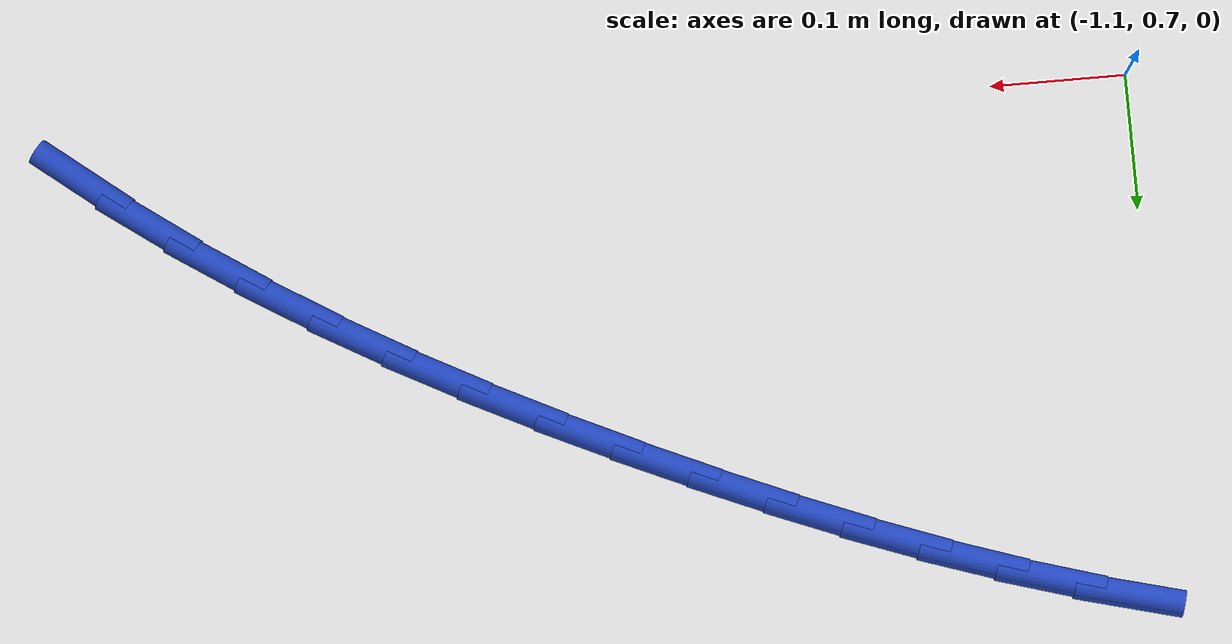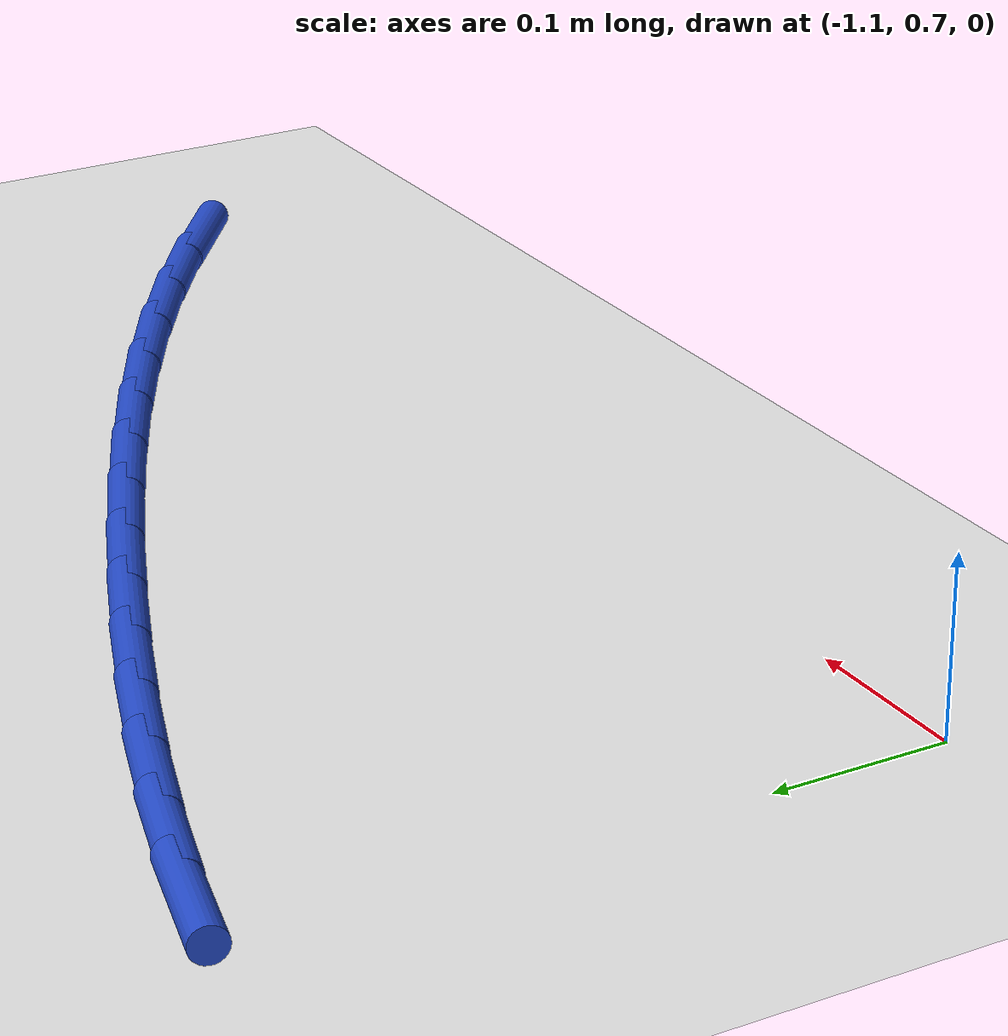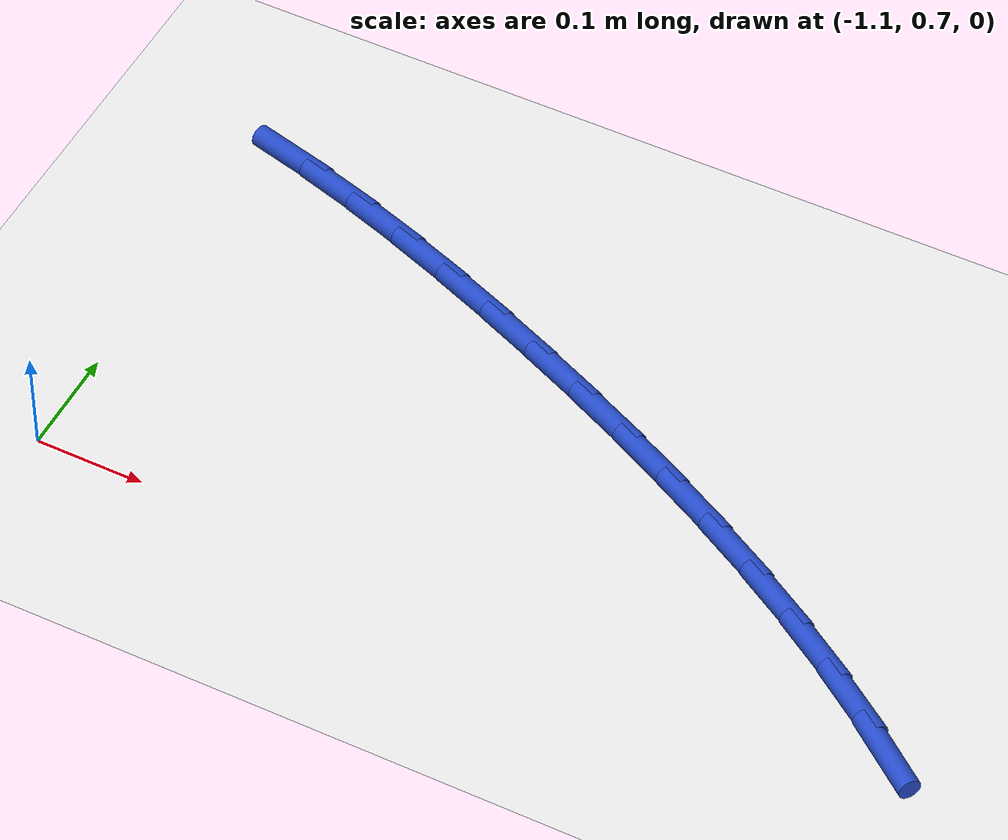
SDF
<sdf version="1.6">
 <world name="default">
  <model name="ground_plane">
   <static>1</static>
   <link name="link">
    <collision name="collision">
     <geometry><plane><normal>0 0 1</normal><size>100 100</size></plane></geometry>
     <surface><friction><ode><mu>100</mu><mu2>50</mu2></ode></friction></surface>
    </collision>
    <visual name="visual">
     <cast_shadows>0</cast_shadows>
     <geometry><plane><normal>0 0 1</normal><size>100 100</size></plane></geometry>
     <material>
      <script><uri>file://media/materials/scripts/gazebo.material</uri><name>Gazebo/WhiteGlow</name></script>
     </material>
    </visual>
   </link>
  </model>
  <model name="line">
   <link name="link_14">
    <pose>-0.33013463952812644 0.7179930879435058 0.01 0 1.57 -0.6647547422468226</pose>
    <collision name="collision">
     <geometry><cylinder><radius>0.01</radius><length>0.08</length></cylinder></geometry>
    </collision>
    <visual name="visual">
     <material>
      <script><name>Gazebo/Blue</name><uri>file://media/materials/scripts/gazebo.material</uri></script>
     </material>
     <geometry><cylinder><radius>0.01</radius><length>0.08</length></cylinder></geometry>
    </visual>
   </link>
   <link name="link_15">
    <pose>-0.37649296534609056 0.7543265137620769 0.01 0 1.57 -0.6194197803285053</pose>
    <collision name="collision">
     <geometry><cylinder><radius>0.01</radius><length>0.08</length></cylinder></geometry>
    </collision>
    <visual name="visual">
     <material>
      <script><name>Gazebo/Blue</name><uri>file://media/materials/scripts/gazebo.material</uri></script>
     </material>
     <geometry><cylinder><radius>0.01</radius><length>0.08</length></cylinder></geometry>
    </visual>
   </link>
   <link name="link_16">
    <pose>-0.4247684291479025 0.7887485333640056 0.01 0 1.57 -0.5786192318658455</pose>
    <collision name="collision">
     <geometry><cylinder><radius>0.01</radius><length>0.08</length></cylinder></geometry>
    </collision>
    <visual name="visual">
     <material>
      <script><name>Gazebo/Blue</name><uri>file://media/materials/scripts/gazebo.material</uri></script>
     </material>
     <geometry><cylinder><radius>0.01</radius><length>0.08</length></cylinder></geometry>
    </visual>
   </link>
   <link name="link_17">
    <pose>-0.47468709384277386 0.8213552441171847 0.01 0 1.57 -0.542062888515661</pose>
    <collision name="collision">
     <geometry><cylinder><radius>0.01</radius><length>0.08</length></cylinder></geometry>
    </collision>
    <visual name="visual">
     <material>
      <script><name>Gazebo/Blue</name><uri>file://media/materials/scripts/gazebo.material</uri></script>
     </material>
     <geometry><cylinder><radius>0.01</radius><length>0.08</length></cylinder></geometry>
    </visual>
   </link>
   <link name="link_18">
    <pose>-0.5259750223399162 0.8522427433895068 0.01 0 1.57 -0.5094669987496914</pose>
    <collision name="collision">
     <geometry><cylinder><radius>0.01</radius><length>0.08</length></cylinder></geometry>
    </collision>
    <visual name="visual">
     <material>
      <script><name>Gazebo/Blue</name><uri>file://media/materials/scripts/gazebo.material</uri></script>
     </material>
     <geometry><cylinder><radius>0.01</radius><length>0.08</length></cylinder></geometry>
    </visual>
   </link>
   <link name="link_19">
    <pose>-0.5783582775485411 0.8815071285488643 0.01 0 1.57 -0.4805684579718444</pose>
    <collision name="collision">
     <geometry><cylinder><radius>0.01</radius><length>0.08</length></cylinder></geometry>
    </collision>
    <visual name="visual">
     <material>
      <script><name>Gazebo/Blue</name><uri>file://media/materials/scripts/gazebo.material</uri></script>
     </material>
     <geometry><cylinder><radius>0.01</radius><length>0.08</length></cylinder></geometry>
    </visual>
   </link>
   <link name="link_20">
    <pose>-0.6315629223778602 0.9092444969631499 0.01 0 1.57 -0.4551342969713</pose>
    <collision name="collision">
     <geometry><cylinder><radius>0.01</radius><length>0.08</length></cylinder></geometry>
    </collision>
    <visual name="visual">
     <material>
      <script><name>Gazebo/Blue</name><uri>file://media/materials/scripts/gazebo.material</uri></script>
     </material>
     <geometry><cylinder><radius>0.01</radius><length>0.08</length></cylinder></geometry>
    </visual>
   </link>
   <link name="link_21">
    <pose>-0.6853150197370849 0.9355509460002563 0.01 0 1.57 -0.4329680846589801</pose>
    <collision name="collision">
     <geometry><cylinder><radius>0.01</radius><length>0.08</length></cylinder></geometry>
    </collision>
    <visual name="visual">
     <material>
      <script><name>Gazebo/Blue</name><uri>file://media/materials/scripts/gazebo.material</uri></script>
     </material>
     <geometry><cylinder><radius>0.01</radius><length>0.08</length></cylinder></geometry>
    </visual>
   </link>
   <link name="link_22">
    <pose>-0.7393406325354269 0.960522573028076 0.01 0 1.57 -0.41389965084271174</pose>
    <collision name="collision">
     <geometry><cylinder><radius>0.01</radius><length>0.08</length></cylinder></geometry>
    </collision>
    <visual name="visual">
     <material>
      <script><name>Gazebo/Blue</name><uri>file://media/materials/scripts/gazebo.material</uri></script>
     </material>
     <geometry><cylinder><radius>0.01</radius><length>0.08</length></cylinder></geometry>
    </visual>
   </link>
   <link name="link_23">
    <pose>-0.7933668993948282 0.9842549836208743 0.01 0 1.57 -0.39569955357456016</pose>
    <collision name="collision">
     <geometry><cylinder><radius>0.01</radius><length>0.08</length></cylinder></geometry>
    </collision>
    <visual name="visual">
     <material>
      <script><name>Gazebo/Blue</name><uri>file://media/materials/scripts/gazebo.material</uri></script>
     </material>
     <geometry><cylinder><radius>0.01</radius><length>0.08</length></cylinder></geometry>
    </visual>
   </link>
   <link name="link_24">
    <pose>-0.8472740524300535 1.006773792172157 0.01 0 1.57 -0.3740589395116554</pose>
    <collision name="collision">
     <geometry><cylinder><radius>0.01</radius><length>0.08</length></cylinder></geometry>
    </collision>
    <visual name="visual">
     <material>
      <script><name>Gazebo/Blue</name><uri>file://media/materials/scripts/gazebo.material</uri></script>
     </material>
     <geometry><cylinder><radius>0.01</radius><length>0.08</length></cylinder></geometry>
    </visual>
   </link>
   <link name="link_25">
    <pose>-0.9012528637698933 1.0279626405993023 0.01 0 1.57 -0.3485689610016511</pose>
    <collision name="collision">
     <geometry><cylinder><radius>0.01</radius><length>0.08</length></cylinder></geometry>
    </collision>
    <visual name="visual">
     <material>
      <script><name>Gazebo/Blue</name><uri>file://media/materials/scripts/gazebo.material</uri></script>
     </material>
     <geometry><cylinder><radius>0.01</radius><length>0.08</length></cylinder></geometry>
    </visual>
   </link>
   <link name="link_26">
    <pose>-0.9555317000493738 1.0476879833884487 0.01 0 1.57 -0.3194369293839066</pose>
    <collision name="collision">
     <geometry><cylinder><radius>0.01</radius><length>0.08</length></cylinder></geometry>
    </collision>
    <visual name="visual">
     <material>
      <script><name>Gazebo/Blue</name><uri>file://media/materials/scripts/gazebo.material</uri></script>
     </material>
     <geometry><cylinder><radius>0.01</radius><length>0.08</length></cylinder></geometry>
    </visual>
   </link>
   <link name="link_27">
    <pose>-1.01033892790352 1.0658162750257323 0.01 0 1.57 -0.2869679678349898</pose>
    <collision name="collision">
     <geometry><cylinder><radius>0.01</radius><length>0.08</length></cylinder></geometry>
    </collision>
    <visual name="visual">
     <material>
      <script><name>Gazebo/Blue</name><uri>file://media/materials/scripts/gazebo.material</uri></script>
     </material>
     <geometry><cylinder><radius>0.01</radius><length>0.08</length></cylinder></geometry>
    </visual>
   </link>
   <link name="link_28">
    <pose>-1.0659029139673593 1.0822139699972915 0.01 0 1.57 -0.25156312445442297</pose>
    <collision name="collision">
     <geometry><cylinder><radius>0.01</radius><length>0.08</length></cylinder></geometry>
    </collision>
    <visual name="visual">
     <material>
      <script><name>Gazebo/Blue</name><uri>file://media/materials/scripts/gazebo.material</uri></script>
     </material>
     <geometry><cylinder><radius>0.01</radius><length>0.08</length></cylinder></geometry>
    </visual>
   </link>
  </model>
 </world>
</sdf>
